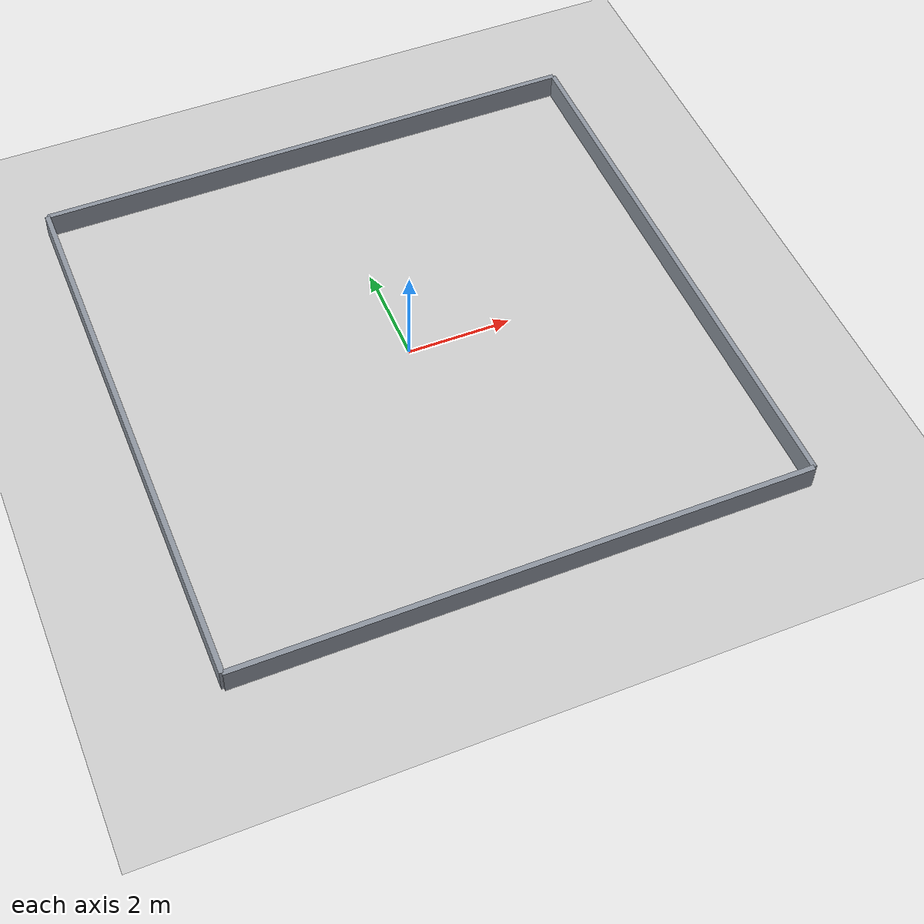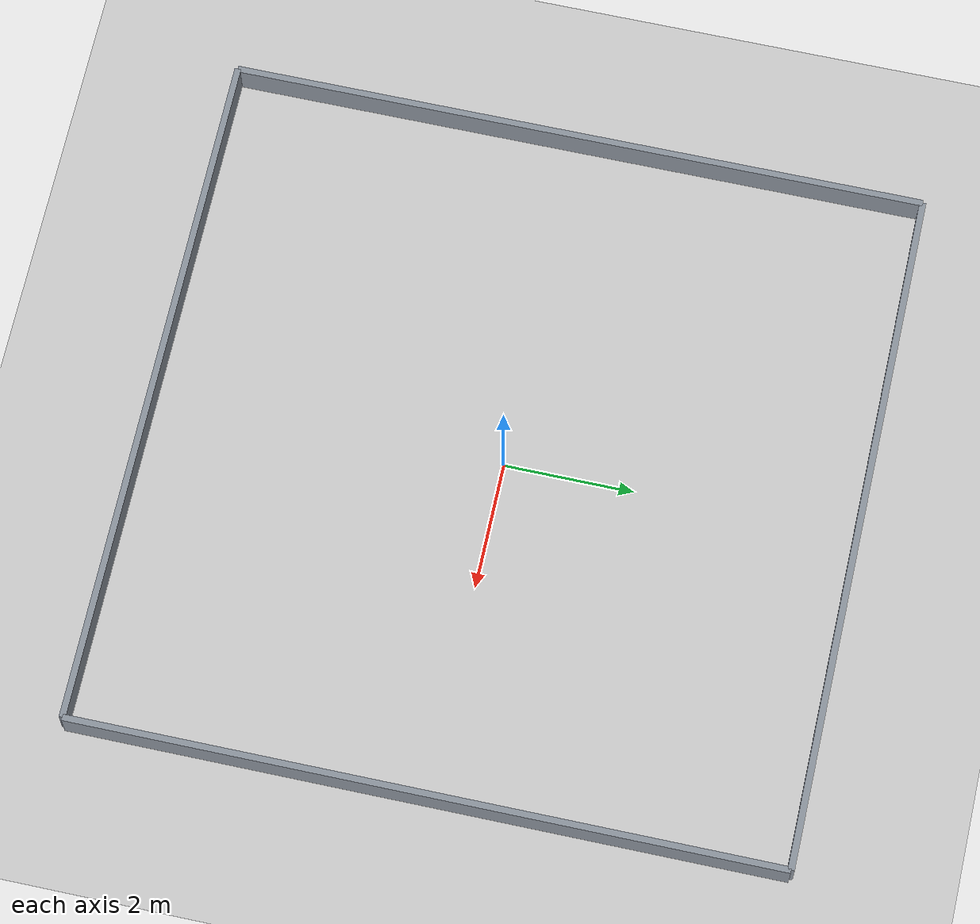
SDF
<?xml version="1.0"?>
<sdf version="1.6">
  <world name="interview_arena">
    <gravity>0 0 -9.8</gravity>
    <include>
      <uri>model://sun</uri>
    </include>
    <include>
      <uri>model://ground_plane</uri>
    </include>

    <model name="north_wall">
      <static>true</static>
      <pose>0 5.4 0.25 0 0 0</pose>
      <link name="link">
        <collision name="collision">
          <geometry>
            <box>
              <size>10.8 0.1 0.5</size>
            </box>
          </geometry>
        </collision>
        <visual name="visual">
          <geometry>
            <box>
              <size>10.8 0.1 0.5</size>
            </box>
          </geometry>
          <material>
            <ambient>0.55 0.58 0.62 1</ambient>
            <diffuse>0.55 0.58 0.62 1</diffuse>
          </material>
        </visual>
      </link>
    </model>

    <model name="south_wall">
      <static>true</static>
      <pose>0 -5.4 0.25 0 0 0</pose>
      <link name="link">
        <collision name="collision">
          <geometry>
            <box>
              <size>10.8 0.1 0.5</size>
            </box>
          </geometry>
        </collision>
        <visual name="visual">
          <geometry>
            <box>
              <size>10.8 0.1 0.5</size>
            </box>
          </geometry>
          <material>
            <ambient>0.55 0.58 0.62 1</ambient>
            <diffuse>0.55 0.58 0.62 1</diffuse>
          </material>
        </visual>
      </link>
    </model>

    <model name="east_wall">
      <static>true</static>
      <pose>5.4 0 0.25 0 0 0</pose>
      <link name="link">
        <collision name="collision">
          <geometry>
            <box>
              <size>0.1 10.8 0.5</size>
            </box>
          </geometry>
        </collision>
        <visual name="visual">
          <geometry>
            <box>
              <size>0.1 10.8 0.5</size>
            </box>
          </geometry>
          <material>
            <ambient>0.55 0.58 0.62 1</ambient>
            <diffuse>0.55 0.58 0.62 1</diffuse>
          </material>
        </visual>
      </link>
    </model>

    <model name="west_wall">
      <static>true</static>
      <pose>-5.4 0 0.25 0 0 0</pose>
      <link name="link">
        <collision name="collision">
          <geometry>
            <box>
              <size>0.1 10.8 0.5</size>
            </box>
          </geometry>
        </collision>
        <visual name="visual">
          <geometry>
            <box>
              <size>0.1 10.8 0.5</size>
            </box>
          </geometry>
          <material>
            <ambient>0.55 0.58 0.62 1</ambient>
            <diffuse>0.55 0.58 0.62 1</diffuse>
          </material>
        </visual>
      </link>
    </model>
  </world>
</sdf>
